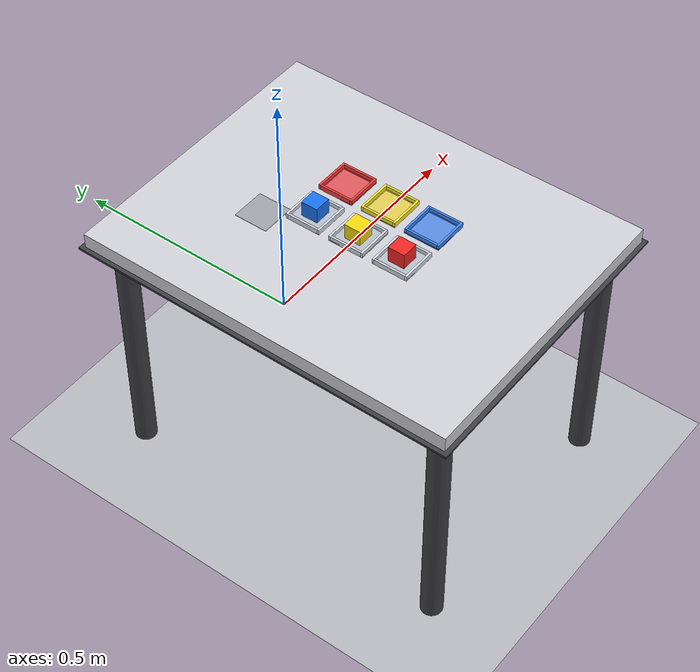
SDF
<?xml version="1.0" ?>
<sdf version="1.8">
  <world name="default">
    <physics name="1ms" type="ignored">
      <max_step_size>0.001</max_step_size>
      <real_time_factor>1.0</real_time_factor>
    </physics>

    <!-- Plugins -->
    <plugin
      filename="ignition-gazebo-physics-system"
      name="ignition::gazebo::systems::Physics">
    </plugin>
    <plugin
      filename="ignition-gazebo-user-commands-system"
      name="ignition::gazebo::systems::UserCommands">
    </plugin>
    <plugin
      filename="ignition-gazebo-scene-broadcaster-system"
      name="ignition::gazebo::systems::SceneBroadcaster">
    </plugin>

    <!-- Giao dien va Goc nhin Camera mac dinh Gazebo huong ve ban thao tac -->
    <gui fullscreen="0">
      <camera name="user_camera">
        <pose>1.05 -0.85 0.65 0 0.45 2.45</pose>
        <view_controller>orbit</view_controller>
      </camera>
    </gui>

    <!-- Anh sang mat troi -->
    <light type="directional" name="sun">
      <cast_shadows>true</cast_shadows>
      <pose>0 0 10 0 0 0</pose>
      <diffuse>0.85 0.85 0.85 1</diffuse>
      <specular>0.2 0.2 0.2 1</specular>
      <direction>-0.5 0.2 -0.85</direction>
    </light>

    <!-- Mat san phong thi nghiem (Ground Floor tai Z = -0.64m) -->
    <model name="ground_plane">
      <static>true</static>
      <pose>0 0 -0.64 0 0 0</pose>
      <link name="link">
        <collision name="collision">
          <geometry>
            <plane>
              <normal>0 0 1</normal>
              <size>20 20</size>
            </plane>
          </geometry>
        </collision>
        <visual name="visual">
          <geometry>
            <plane>
              <normal>0 0 1</normal>
              <size>20 20</size>
            </plane>
          </geometry>
          <material>
            <ambient>0.72 0.72 0.75 1</ambient>
            <diffuse>0.72 0.72 0.75 1</diffuse>
          </material>
        </visual>
      </link>
    </model>

    <!-- Ban thao tac Robot (Industrial Workbench hien dai) -->
    <model name="work_table">
      <static>true</static>
      <link name="table_link">
        <!-- Mat ban (Tabletop) day 4cm, mat tren nam tai Z = 0.0m -->
        <collision name="top_collision">
          <pose>0.26 0.0 -0.02 0 0 0</pose>
          <geometry>
            <box>
              <size>0.70 0.90 0.04</size>
            </box>
          </geometry>
        </collision>
        <visual name="top_visual">
          <pose>0.26 0.0 -0.02 0 0 0</pose>
          <geometry>
            <box>
              <size>0.70 0.90 0.04</size>
            </box>
          </geometry>
          <material>
            <ambient>0.82 0.82 0.85 1.0</ambient> <!-- Xam bac cong nghiep sang trong, de quan sat -->
            <diffuse>0.82 0.82 0.85 1.0</diffuse>
            <specular>0.3 0.3 0.3 1.0</specular>
          </material>
        </visual>

        <!-- Khung vien kim loai xung quanh mat ban -->
        <visual name="top_border_visual">
          <pose>0.26 0.0 -0.038 0 0 0</pose>
          <geometry>
            <box>
              <size>0.72 0.92 0.005</size>
            </box>
          </geometry>
          <material>
            <ambient>0.25 0.25 0.28 1.0</ambient>
            <diffuse>0.25 0.25 0.28 1.0</diffuse>
          </material>
        </visual>

        <!-- Chan ban 1 -->
        <visual name="leg1_visual">
          <pose>0.55 0.40 -0.34 0 0 0</pose>
          <geometry>
            <cylinder>
              <radius>0.025</radius>
              <length>0.60</length>
            </cylinder>
          </geometry>
          <material>
            <ambient>0.25 0.25 0.28 1</ambient>
            <diffuse>0.25 0.25 0.28 1</diffuse>
          </material>
        </visual>
        <!-- Chan ban 2 -->
        <visual name="leg2_visual">
          <pose>0.55 -0.40 -0.34 0 0 0</pose>
          <geometry>
            <cylinder>
              <radius>0.025</radius>
              <length>0.60</length>
            </cylinder>
          </geometry>
          <material>
            <ambient>0.25 0.25 0.28 1</ambient>
            <diffuse>0.25 0.25 0.28 1</diffuse>
          </material>
        </visual>
        <!-- Chan ban 3 -->
        <visual name="leg3_visual">
          <pose>-0.03 0.40 -0.34 0 0 0</pose>
          <geometry>
            <cylinder>
              <radius>0.025</radius>
              <length>0.60</length>
            </cylinder>
          </geometry>
          <material>
            <ambient>0.25 0.25 0.28 1</ambient>
            <diffuse>0.25 0.25 0.28 1</diffuse>
          </material>
        </visual>
        <!-- Chan ban 4 -->
        <visual name="leg4_visual">
          <pose>-0.03 -0.40 -0.34 0 0 0</pose>
          <geometry>
            <cylinder>
              <radius>0.025</radius>
              <length>0.60</length>
            </cylinder>
          </geometry>
          <material>
            <ambient>0.25 0.25 0.28 1</ambient>
            <diffuse>0.25 0.25 0.28 1</diffuse>
          </material>
        </visual>
      </link>
    </model>

    <!-- 3 KHAY CHUA PHOI BAN DAU (SOURCE TRAYS - X = 0.24m)      -->

    <!-- Khay chua cho 1 (WAIT 1 - Mau thep anh kim sang) -->
    <model name="tray_red">
      <static>true</static>
      <pose>0.24 -0.11 0.0015 0 0 0</pose>
      <link name="tray_red_link">
        <visual name="floor_visual">
          <geometry>
            <box>
              <size>0.086 0.086 0.003</size>
            </box>
          </geometry>
          <material>
            <ambient>0.72 0.75 0.80 1.0</ambient>
            <diffuse>0.72 0.75 0.80 1.0</diffuse>
            <specular>0.4 0.4 0.4 1.0</specular>
          </material>
        </visual>
        <visual name="front_rim">
          <pose>0 -0.0405 0.0045 0 0 0</pose>
          <geometry>
            <box>
              <size>0.086 0.005 0.012</size>
            </box>
          </geometry>
          <material>
            <ambient>0.85 0.88 0.92 1.0</ambient>
            <diffuse>0.85 0.88 0.92 1.0</diffuse>
            <specular>0.5 0.5 0.5 1.0</specular>
          </material>
        </visual>
        <visual name="back_rim">
          <pose>0 0.0405 0.0045 0 0 0</pose>
          <geometry>
            <box>
              <size>0.086 0.005 0.012</size>
            </box>
          </geometry>
          <material>
            <ambient>0.85 0.88 0.92 1.0</ambient>
            <diffuse>0.85 0.88 0.92 1.0</diffuse>
            <specular>0.5 0.5 0.5 1.0</specular>
          </material>
        </visual>
        <visual name="left_rim">
          <pose>0.0405 0 0.0045 0 0 0</pose>
          <geometry>
            <box>
              <size>0.005 0.076 0.012</size>
            </box>
          </geometry>
          <material>
            <ambient>0.85 0.88 0.92 1.0</ambient>
            <diffuse>0.85 0.88 0.92 1.0</diffuse>
            <specular>0.5 0.5 0.5 1.0</specular>
          </material>
        </visual>
        <visual name="right_rim">
          <pose>-0.0405 0 0.0045 0 0 0</pose>
          <geometry>
            <box>
              <size>0.005 0.076 0.012</size>
            </box>
          </geometry>
          <material>
            <ambient>0.85 0.88 0.92 1.0</ambient>
            <diffuse>0.85 0.88 0.92 1.0</diffuse>
            <specular>0.5 0.5 0.5 1.0</specular>
          </material>
        </visual>
      </link>
    </model>

    <!-- Khay chua cho 2 (WAIT 2 - Mau thep anh kim sang) -->
    <model name="tray_yellow">
      <static>true</static>
      <pose>0.24 0.00 0.0015 0 0 0</pose>
      <link name="tray_yellow_link">
        <visual name="floor_visual">
          <geometry>
            <box>
              <size>0.086 0.086 0.003</size>
            </box>
          </geometry>
          <material>
            <ambient>0.72 0.75 0.80 1.0</ambient>
            <diffuse>0.72 0.75 0.80 1.0</diffuse>
            <specular>0.4 0.4 0.4 1.0</specular>
          </material>
        </visual>
        <visual name="front_rim">
          <pose>0 -0.0405 0.0045 0 0 0</pose>
          <geometry>
            <box>
              <size>0.086 0.005 0.012</size>
            </box>
          </geometry>
          <material>
            <ambient>0.85 0.88 0.92 1.0</ambient>
            <diffuse>0.85 0.88 0.92 1.0</diffuse>
            <specular>0.5 0.5 0.5 1.0</specular>
          </material>
        </visual>
        <visual name="back_rim">
          <pose>0 0.0405 0.0045 0 0 0</pose>
          <geometry>
            <box>
              <size>0.086 0.005 0.012</size>
            </box>
          </geometry>
          <material>
            <ambient>0.85 0.88 0.92 1.0</ambient>
            <diffuse>0.85 0.88 0.92 1.0</diffuse>
            <specular>0.5 0.5 0.5 1.0</specular>
          </material>
        </visual>
        <visual name="left_rim">
          <pose>0.0405 0 0.0045 0 0 0</pose>
          <geometry>
            <box>
              <size>0.005 0.076 0.012</size>
            </box>
          </geometry>
          <material>
            <ambient>0.85 0.88 0.92 1.0</ambient>
            <diffuse>0.85 0.88 0.92 1.0</diffuse>
            <specular>0.5 0.5 0.5 1.0</specular>
          </material>
        </visual>
        <visual name="right_rim">
          <pose>-0.0405 0 0.0045 0 0 0</pose>
          <geometry>
            <box>
              <size>0.005 0.076 0.012</size>
            </box>
          </geometry>
          <material>
            <ambient>0.85 0.88 0.92 1.0</ambient>
            <diffuse>0.85 0.88 0.92 1.0</diffuse>
            <specular>0.5 0.5 0.5 1.0</specular>
          </material>
        </visual>
      </link>
    </model>

    <!-- Khay chua cho 3 (WAIT 3 - Mau thep anh kim sang) -->
    <model name="tray_blue">
      <static>true</static>
      <pose>0.24 0.11 0.0015 0 0 0</pose>
      <link name="tray_blue_link">
        <visual name="floor_visual">
          <geometry>
            <box>
              <size>0.086 0.086 0.003</size>
            </box>
          </geometry>
          <material>
            <ambient>0.72 0.75 0.80 1.0</ambient>
            <diffuse>0.72 0.75 0.80 1.0</diffuse>
            <specular>0.4 0.4 0.4 1.0</specular>
          </material>
        </visual>
        <visual name="front_rim">
          <pose>0 -0.0405 0.0045 0 0 0</pose>
          <geometry>
            <box>
              <size>0.086 0.005 0.012</size>
            </box>
          </geometry>
          <material>
            <ambient>0.85 0.88 0.92 1.0</ambient>
            <diffuse>0.85 0.88 0.92 1.0</diffuse>
            <specular>0.5 0.5 0.5 1.0</specular>
          </material>
        </visual>
        <visual name="back_rim">
          <pose>0 0.0405 0.0045 0 0 0</pose>
          <geometry>
            <box>
              <size>0.086 0.005 0.012</size>
            </box>
          </geometry>
          <material>
            <ambient>0.85 0.88 0.92 1.0</ambient>
            <diffuse>0.85 0.88 0.92 1.0</diffuse>
            <specular>0.5 0.5 0.5 1.0</specular>
          </material>
        </visual>
        <visual name="left_rim">
          <pose>0.0405 0 0.0045 0 0 0</pose>
          <geometry>
            <box>
              <size>0.005 0.076 0.012</size>
            </box>
          </geometry>
          <material>
            <ambient>0.85 0.88 0.92 1.0</ambient>
            <diffuse>0.85 0.88 0.92 1.0</diffuse>
            <specular>0.5 0.5 0.5 1.0</specular>
          </material>
        </visual>
        <visual name="right_rim">
          <pose>-0.0405 0 0.0045 0 0 0</pose>
          <geometry>
            <box>
              <size>0.005 0.076 0.012</size>
            </box>
          </geometry>
          <material>
            <ambient>0.85 0.88 0.92 1.0</ambient>
            <diffuse>0.85 0.88 0.92 1.0</diffuse>
            <specular>0.5 0.5 0.5 1.0</specular>
          </material>
        </visual>
      </link>
    </model>

    <!-- 3 KHAY ZONE DICH DEN (TARGET ZONE TRAYS - X = 0.35m)     -->

    <!-- Vung A (Zone A Tray) -->
    <model name="zone_a_pad">
      <static>true</static>
      <pose>0.35 -0.11 0.0015 0 0 0</pose>
      <link name="zone_a_link">
        <visual name="floor_visual">
          <geometry>
            <box>
              <size>0.086 0.086 0.003</size>
            </box>
          </geometry>
          <material>
            <ambient>0.15 0.45 0.95 0.65</ambient>
            <diffuse>0.15 0.45 0.95 0.65</diffuse>
          </material>
        </visual>
        <visual name="front_rim">
          <pose>0 -0.0405 0.0045 0 0 0</pose>
          <geometry>
            <box>
              <size>0.086 0.005 0.012</size>
            </box>
          </geometry>
          <material>
            <ambient>0.25 0.55 1.0 0.95</ambient>
            <diffuse>0.25 0.55 1.0 0.95</diffuse>
          </material>
        </visual>
        <visual name="back_rim">
          <pose>0 0.0405 0.0045 0 0 0</pose>
          <geometry>
            <box>
              <size>0.086 0.005 0.012</size>
            </box>
          </geometry>
          <material>
            <ambient>0.25 0.55 1.0 0.95</ambient>
            <diffuse>0.25 0.55 1.0 0.95</diffuse>
          </material>
        </visual>
        <visual name="left_rim">
          <pose>0.0405 0 0.0045 0 0 0</pose>
          <geometry>
            <box>
              <size>0.005 0.076 0.012</size>
            </box>
          </geometry>
          <material>
            <ambient>0.25 0.55 1.0 0.95</ambient>
            <diffuse>0.25 0.55 1.0 0.95</diffuse>
          </material>
        </visual>
        <visual name="right_rim">
          <pose>-0.0405 0 0.0045 0 0 0</pose>
          <geometry>
            <box>
              <size>0.005 0.076 0.012</size>
            </box>
          </geometry>
          <material>
            <ambient>0.25 0.55 1.0 0.95</ambient>
            <diffuse>0.25 0.55 1.0 0.95</diffuse>
          </material>
        </visual>
      </link>
    </model>

    <!-- Vung B (Zone B Tray) -->
    <model name="zone_b_pad">
      <static>true</static>
      <pose>0.35 0.00 0.0015 0 0 0</pose>
      <link name="zone_b_link">
        <visual name="floor_visual">
          <geometry>
            <box>
              <size>0.086 0.086 0.003</size>
            </box>
          </geometry>
          <material>
            <ambient>0.98 0.85 0.10 0.65</ambient>
            <diffuse>0.98 0.85 0.10 0.65</diffuse>
          </material>
        </visual>
        <visual name="front_rim">
          <pose>0 -0.0405 0.0045 0 0 0</pose>
          <geometry>
            <box>
              <size>0.086 0.005 0.012</size>
            </box>
          </geometry>
          <material>
            <ambient>1.0 0.92 0.2 0.95</ambient>
            <diffuse>1.0 0.92 0.2 0.95</diffuse>
          </material>
        </visual>
        <visual name="back_rim">
          <pose>0 0.0405 0.0045 0 0 0</pose>
          <geometry>
            <box>
              <size>0.086 0.005 0.012</size>
            </box>
          </geometry>
          <material>
            <ambient>1.0 0.92 0.2 0.95</ambient>
            <diffuse>1.0 0.92 0.2 0.95</diffuse>
          </material>
        </visual>
        <visual name="left_rim">
          <pose>0.0405 0 0.0045 0 0 0</pose>
          <geometry>
            <box>
              <size>0.005 0.076 0.012</size>
            </box>
          </geometry>
          <material>
            <ambient>1.0 0.92 0.2 0.95</ambient>
            <diffuse>1.0 0.92 0.2 0.95</diffuse>
          </material>
        </visual>
        <visual name="right_rim">
          <pose>-0.0405 0 0.0045 0 0 0</pose>
          <geometry>
            <box>
              <size>0.005 0.076 0.012</size>
            </box>
          </geometry>
          <material>
            <ambient>1.0 0.92 0.2 0.95</ambient>
            <diffuse>1.0 0.92 0.2 0.95</diffuse>
          </material>
        </visual>
      </link>
    </model>

    <!-- Vung C (Zone C Tray) -->
    <model name="zone_c_pad">
      <static>true</static>
      <pose>0.35 0.11 0.0015 0 0 0</pose>
      <link name="zone_c_link">
        <visual name="floor_visual">
          <geometry>
            <box>
              <size>0.086 0.086 0.003</size>
            </box>
          </geometry>
          <material>
            <ambient>0.95 0.15 0.15 0.65</ambient>
            <diffuse>0.95 0.15 0.15 0.65</diffuse>
          </material>
        </visual>
        <visual name="front_rim">
          <pose>0 -0.0405 0.0045 0 0 0</pose>
          <geometry>
            <box>
              <size>0.086 0.005 0.012</size>
            </box>
          </geometry>
          <material>
            <ambient>0.98 0.25 0.25 0.95</ambient>
            <diffuse>0.98 0.25 0.25 0.95</diffuse>
          </material>
        </visual>
        <visual name="back_rim">
          <pose>0 0.0405 0.0045 0 0 0</pose>
          <geometry>
            <box>
              <size>0.086 0.005 0.012</size>
            </box>
          </geometry>
          <material>
            <ambient>0.98 0.25 0.25 0.95</ambient>
            <diffuse>0.98 0.25 0.25 0.95</diffuse>
          </material>
        </visual>
        <visual name="left_rim">
          <pose>0.0405 0 0.0045 0 0 0</pose>
          <geometry>
            <box>
              <size>0.005 0.076 0.012</size>
            </box>
          </geometry>
          <material>
            <ambient>0.98 0.25 0.25 0.95</ambient>
            <diffuse>0.98 0.25 0.25 0.95</diffuse>
          </material>
        </visual>
        <visual name="right_rim">
          <pose>-0.0405 0 0.0045 0 0 0</pose>
          <geometry>
            <box>
              <size>0.005 0.076 0.012</size>
            </box>
          </geometry>
          <material>
            <ambient>0.98 0.25 0.25 0.95</ambient>
            <diffuse>0.98 0.25 0.25 0.95</diffuse>
          </material>
        </visual>
      </link>
    </model>

    <!-- Vung Dem (Zone Temp - Mau xam sang) -->
    <model name="zone_temp_pad">
      <static>true</static>
      <pose>0.18 0.20 0.001 0 0 0</pose>
      <link name="zone_temp_link">
        <visual name="visual">
          <geometry>
            <box>
              <size>0.08 0.08 0.002</size>
            </box>
          </geometry>
          <material>
            <ambient>0.65 0.65 0.68 0.85</ambient>
            <diffuse>0.65 0.65 0.68 0.85</diffuse>
          </material>
        </visual>
      </link>
    </model>

    <!-- 3 KHOI HOP VAT THE (CUBES)                               -->

    <!-- Khoi hop Do (red_cube) -->
    <model name="red_cube">
      <pose>0.24 -0.11 0.02 0 0 0</pose>
      <link name="link">
        <inertial>
          <mass>0.05</mass>
          <inertia>
            <ixx>0.000013</ixx>
            <iyy>0.000013</iyy>
            <izz>0.000013</izz>
          </inertia>
        </inertial>
        <collision name="collision">
          <geometry>
            <box>
              <size>0.04 0.04 0.04</size>
            </box>
          </geometry>
        </collision>
        <visual name="visual">
          <geometry>
            <box>
              <size>0.04 0.04 0.04</size>
            </box>
          </geometry>
          <material>
            <ambient>0.95 0.15 0.15 1.0</ambient>
            <diffuse>0.95 0.15 0.15 1.0</diffuse>
          </material>
        </visual>
      </link>
    </model>

    <!-- Khoi hop Vang (yellow_cube) -->
    <model name="yellow_cube">
      <pose>0.24 0.00 0.02 0 0 0</pose>
      <link name="link">
        <inertial>
          <mass>0.05</mass>
          <inertia>
            <ixx>0.000013</ixx>
            <iyy>0.000013</iyy>
            <izz>0.000013</izz>
          </inertia>
        </inertial>
        <collision name="collision">
          <geometry>
            <box>
              <size>0.04 0.04 0.04</size>
            </box>
          </geometry>
        </collision>
        <visual name="visual">
          <geometry>
            <box>
              <size>0.04 0.04 0.04</size>
            </box>
          </geometry>
          <material>
            <ambient>0.98 0.85 0.05 1.0</ambient>
            <diffuse>0.98 0.85 0.05 1.0</diffuse>
          </material>
        </visual>
      </link>
    </model>

    <!-- Khoi hop Xanh lam (blue_cube) -->
    <model name="blue_cube">
      <pose>0.24 0.11 0.02 0 0 0</pose>
      <link name="link">
        <inertial>
          <mass>0.05</mass>
          <inertia>
            <ixx>0.000013</ixx>
            <iyy>0.000013</iyy>
            <izz>0.000013</izz>
          </inertia>
        </inertial>
        <collision name="collision">
          <geometry>
            <box>
              <size>0.04 0.04 0.04</size>
            </box>
          </geometry>
        </collision>
        <visual name="visual">
          <geometry>
            <box>
              <size>0.04 0.04 0.04</size>
            </box>
          </geometry>
          <material>
            <ambient>0.10 0.45 0.95 1.0</ambient>
            <diffuse>0.10 0.45 0.95 1.0</diffuse>
          </material>
        </visual>
      </link>
    </model>

  </world>
</sdf>
